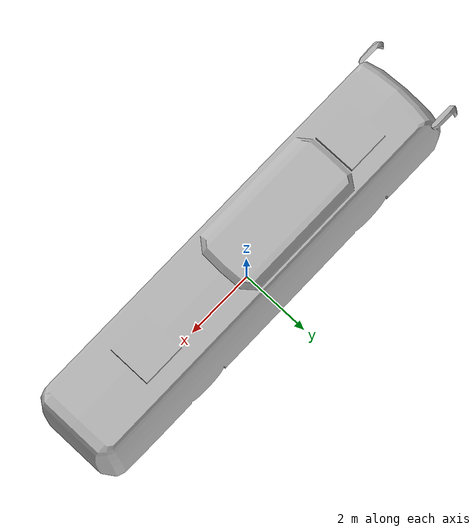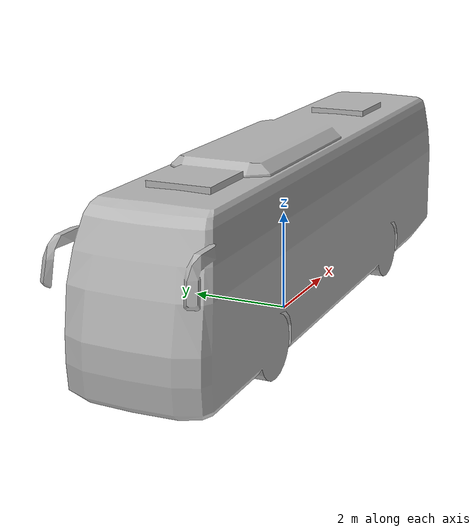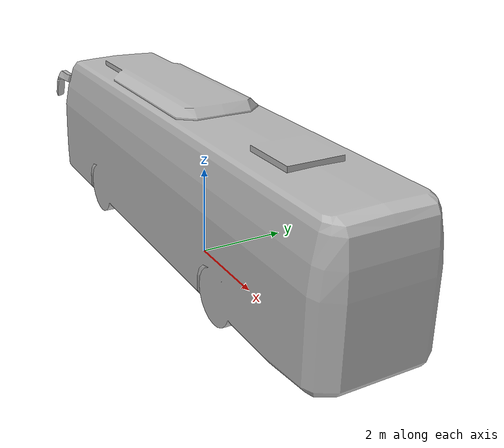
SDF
<?xml version='1.0'?>
<sdf version='1.7'>
  <model name='bus'>
    <model name='bus'>
      <static>1</static>
      <link name='link'>
        <collision name='collision'>
          <geometry>
            <mesh>
              <scale>0.01 0.01 0.01</scale>
              <uri>model://bus/meshes/bus.obj</uri>
            </mesh>
          </geometry>
        </collision>
        <visual name='visual'>
          <geometry>
            <mesh>
              <scale>0.01 0.01 0.01</scale>
              <uri>model://bus/meshes/bus.obj</uri>
            </mesh>
          </geometry>
        </visual>
      </link>
      <pose>5e-06 2e-06 -0 0 0 -1.56638</pose>
    </model>
    <static>0</static>
    <allow_auto_disable>1</allow_auto_disable>
  </model>
</sdf>
